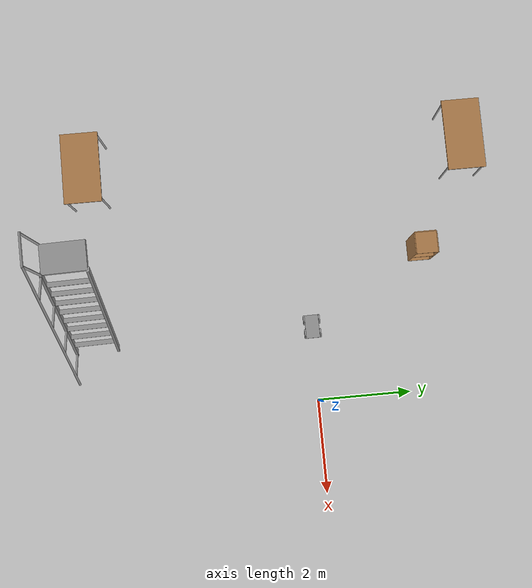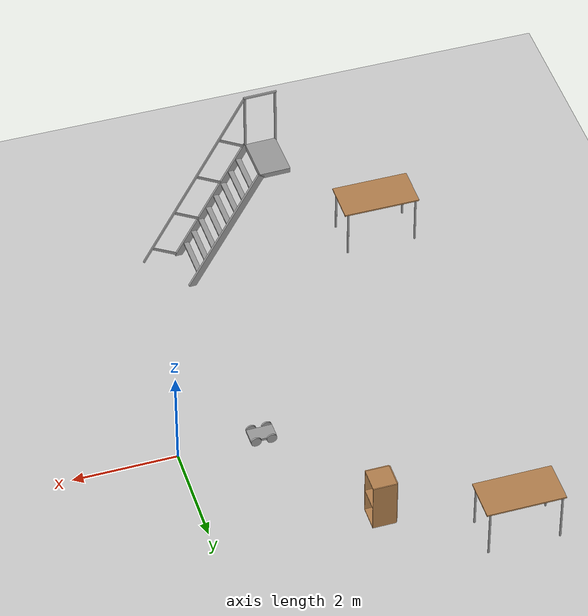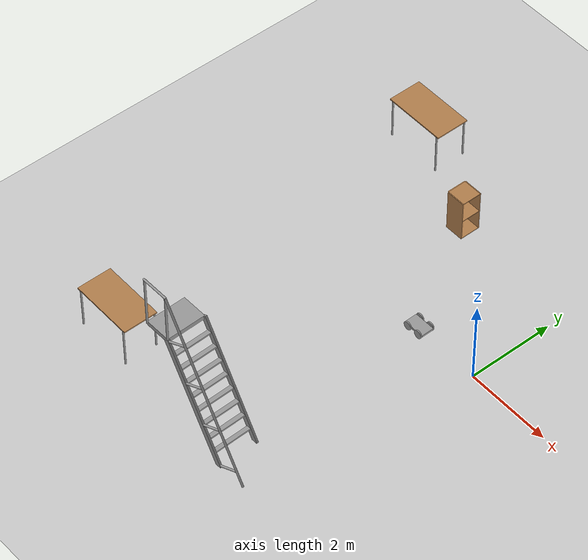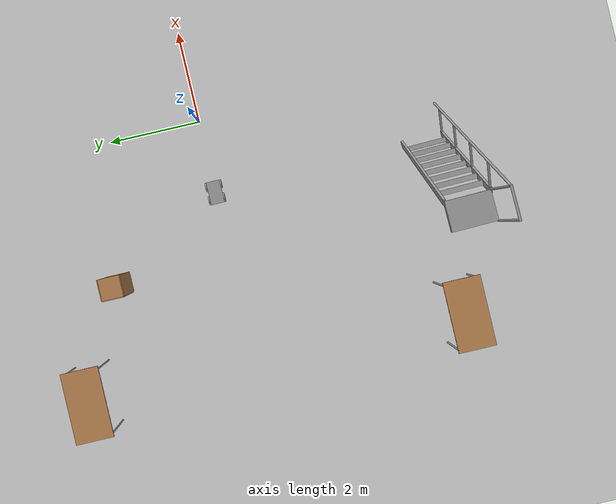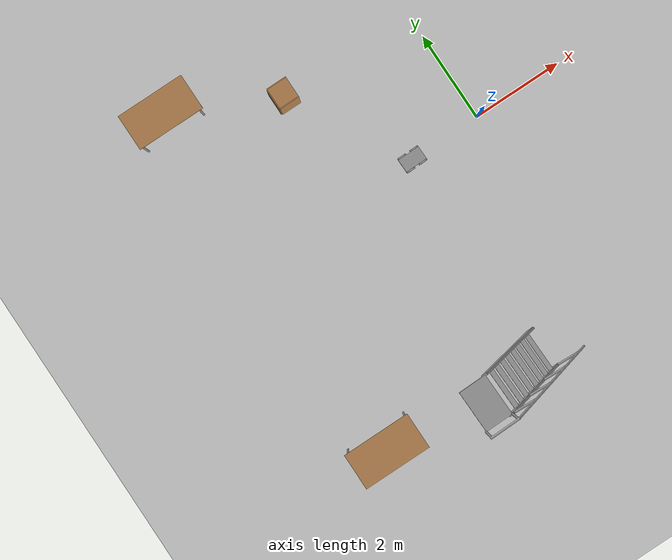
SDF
<sdf version="1.6">
 <world name="default">
  <model name="ground_plane">
   <static>1</static>
   <link name="link">
    <collision name="collision">
     <geometry><plane><normal>0 0 1</normal><size>100 100</size></plane></geometry>
     <surface>
      <contact><collide_bitmask>65535</collide_bitmask></contact>
      <friction><ode><mu>100</mu><mu2>50</mu2></ode></friction>
     </surface>
    </collision>
    <visual name="visual">
     <cast_shadows>0</cast_shadows>
     <geometry><plane><normal>0 0 1</normal><size>100 100</size></plane></geometry>
     <material>
      <script><uri>file://media/materials/scripts/gazebo.material</uri><name>Gazebo/Grey</name></script>
     </material>
    </visual>
   </link>
  </model>
  <model name="four_wd">
   <link name="link_0">
    <pose>-6.8e-05 0 0 0 -0 0</pose>
    <inertial>
     <mass>1</mass>
     <inertia>
      <ixx>0.166667</ixx>
      <ixy>0</ixy>
      <ixz>0</ixz>
      <iyy>0.166667</iyy>
      <iyz>0</iyz>
      <izz>0.166667</izz>
     </inertia>
    </inertial>
    <visual name="visual">
     <geometry><box><size>0.5 0.3 0.05</size></box></geometry>
     <material>
      <lighting>1</lighting>
      <script><uri>file://media/materials/scripts/gazebo.material</uri><name>Gazebo/Grey</name></script>
      <shader type="pixel"><normal_map>__default__</normal_map></shader>
      <ambient>0.3 0.3 0.3 1</ambient>
      <diffuse>0.7 0.7 0.7 1</diffuse>
      <specular>0.01 0.01 0.01 1</specular>
      <emissive>0 0 0 1</emissive>
     </material>
    </visual>
    <collision name="collision">
     <geometry><box><size>0.5 0.3 0.05</size></box></geometry>
     <surface>
      <friction>
       <ode><mu>1</mu><mu2>1</mu2><fdir1>0 0 0</fdir1><slip1>0</slip1><slip2>0</slip2></ode>
       <torsional>
        <coefficient>1</coefficient>
        <patch_radius>0</patch_radius>
        <surface_radius>0</surface_radius>
        <use_patch_radius>1</use_patch_radius>
        <ode><slip>0</slip></ode>
       </torsional>
      </friction>
      <bounce><restitution_coefficient>0</restitution_coefficient><threshold>1e+06</threshold></bounce>
      <contact>
       <collide_without_contact>0</collide_without_contact>
       <collide_without_contact_bitmask>1</collide_without_contact_bitmask>
       <collide_bitmask>1</collide_bitmask>
       <ode>
        <soft_cfm>0</soft_cfm>
        <soft_erp>0.2</soft_erp>
        <kp>1e+13</kp>
        <kd>1</kd>
        <max_vel>0.01</max_vel>
        <min_depth>0</min_depth>
       </ode>
       <bullet>
        <split_impulse>1</split_impulse>
        <split_impulse_penetration_threshold>-0.01</split_impulse_penetration_threshold>
        <soft_cfm>0</soft_cfm>
        <soft_erp>0.2</soft_erp>
        <kp>1e+13</kp>
        <kd>1</kd>
       </bullet>
      </contact>
     </surface>
    </collision>
   </link>
   <link name="link_1_clone">
    <pose>0.149932 0.16501 0 1.5707 -0 0</pose>
    <inertial>
     <mass>1</mass>
     <inertia><ixx>0.145833</ixx><ixy>0</ixy><ixz>0</ixz><iyy>0.145833</iyy><iyz>0</iyz><izz>0.125</izz></inertia>
    </inertial>
    <visual name="visual">
     <geometry><cylinder><radius>0.1</radius><length>0.03</length></cylinder></geometry>
     <material>
      <lighting>1</lighting>
      <script><uri>file://media/materials/scripts/gazebo.material</uri><name>Gazebo/Grey</name></script>
      <shader type="pixel"><normal_map>__default__</normal_map></shader>
      <ambient>0.3 0.3 0.3 1</ambient>
      <diffuse>0.7 0.7 0.7 1</diffuse>
      <specular>0.01 0.01 0.01 1</specular>
      <emissive>0 0 0 1</emissive>
     </material>
    </visual>
    <collision name="collision">
     <geometry><cylinder><radius>0.1</radius><length>0.03</length></cylinder></geometry>
     <surface>
      <friction>
       <ode><mu>1</mu><mu2>1</mu2><fdir1>0 0 0</fdir1><slip1>0</slip1><slip2>0</slip2></ode>
       <torsional>
        <coefficient>1</coefficient>
        <patch_radius>0</patch_radius>
        <surface_radius>0</surface_radius>
        <use_patch_radius>1</use_patch_radius>
        <ode><slip>0</slip></ode>
       </torsional>
      </friction>
      <bounce><restitution_coefficient>0</restitution_coefficient><threshold>1e+06</threshold></bounce>
      <contact>
       <collide_without_contact>0</collide_without_contact>
       <collide_without_contact_bitmask>1</collide_without_contact_bitmask>
       <collide_bitmask>1</collide_bitmask>
       <ode>
        <soft_cfm>0</soft_cfm>
        <soft_erp>0.2</soft_erp>
        <kp>1e+13</kp>
        <kd>1</kd>
        <max_vel>0.01</max_vel>
        <min_depth>0</min_depth>
       </ode>
       <bullet>
        <split_impulse>1</split_impulse>
        <split_impulse_penetration_threshold>-0.01</split_impulse_penetration_threshold>
        <soft_cfm>0</soft_cfm>
        <soft_erp>0.2</soft_erp>
        <kp>1e+13</kp>
        <kd>1</kd>
       </bullet>
      </contact>
     </surface>
    </collision>
   </link>
   <link name="link_1_clone_1">
    <pose>-0.150068 0.16501 0 1.5707 -0 0</pose>
    <inertial>
     <mass>1</mass>
     <inertia><ixx>0.145833</ixx><ixy>0</ixy><ixz>0</ixz><iyy>0.145833</iyy><iyz>0</iyz><izz>0.125</izz></inertia>
    </inertial>
    <visual name="visual">
     <geometry><cylinder><radius>0.1</radius><length>0.03</length></cylinder></geometry>
     <material>
      <lighting>1</lighting>
      <script><uri>file://media/materials/scripts/gazebo.material</uri><name>Gazebo/Grey</name></script>
      <shader type="pixel"><normal_map>__default__</normal_map></shader>
      <ambient>0.3 0.3 0.3 1</ambient>
      <diffuse>0.7 0.7 0.7 1</diffuse>
      <specular>0.01 0.01 0.01 1</specular>
      <emissive>0 0 0 1</emissive>
     </material>
    </visual>
    <collision name="collision">
     <geometry><cylinder><radius>0.1</radius><length>0.03</length></cylinder></geometry>
     <surface>
      <friction>
       <ode><mu>1</mu><mu2>1</mu2><fdir1>0 0 0</fdir1><slip1>0</slip1><slip2>0</slip2></ode>
       <torsional>
        <coefficient>1</coefficient>
        <patch_radius>0</patch_radius>
        <surface_radius>0</surface_radius>
        <use_patch_radius>1</use_patch_radius>
        <ode><slip>0</slip></ode>
       </torsional>
      </friction>
      <bounce><restitution_coefficient>0</restitution_coefficient><threshold>1e+06</threshold></bounce>
      <contact>
       <collide_without_contact>0</collide_without_contact>
       <collide_without_contact_bitmask>1</collide_without_contact_bitmask>
       <collide_bitmask>1</collide_bitmask>
       <ode>
        <soft_cfm>0</soft_cfm>
        <soft_erp>0.2</soft_erp>
        <kp>1e+13</kp>
        <kd>1</kd>
        <max_vel>0.01</max_vel>
        <min_depth>0</min_depth>
       </ode>
       <bullet>
        <split_impulse>1</split_impulse>
        <split_impulse_penetration_threshold>-0.01</split_impulse_penetration_threshold>
        <soft_cfm>0</soft_cfm>
        <soft_erp>0.2</soft_erp>
        <kp>1e+13</kp>
        <kd>1</kd>
       </bullet>
      </contact>
     </surface>
    </collision>
   </link>
   <link name="link_1_clone_1_clone">
    <pose>-0.150068 -0.16501 0 1.5707 -0 0</pose>
    <inertial>
     <mass>1</mass>
     <inertia><ixx>0.145833</ixx><ixy>0</ixy><ixz>0</ixz><iyy>0.145833</iyy><iyz>0</iyz><izz>0.125</izz></inertia>
    </inertial>
    <visual name="visual">
     <geometry><cylinder><radius>0.1</radius><length>0.03</length></cylinder></geometry>
     <material>
      <lighting>1</lighting>
      <script><uri>file://media/materials/scripts/gazebo.material</uri><name>Gazebo/Grey</name></script>
      <shader type="pixel"><normal_map>__default__</normal_map></shader>
      <ambient>0.3 0.3 0.3 1</ambient>
      <diffuse>0.7 0.7 0.7 1</diffuse>
      <specular>0.01 0.01 0.01 1</specular>
      <emissive>0 0 0 1</emissive>
     </material>
    </visual>
    <collision name="collision">
     <geometry><cylinder><radius>0.1</radius><length>0.03</length></cylinder></geometry>
     <surface>
      <friction>
       <ode><mu>1</mu><mu2>1</mu2><fdir1>0 0 0</fdir1><slip1>0</slip1><slip2>0</slip2></ode>
       <torsional>
        <coefficient>1</coefficient>
        <patch_radius>0</patch_radius>
        <surface_radius>0</surface_radius>
        <use_patch_radius>1</use_patch_radius>
        <ode><slip>0</slip></ode>
       </torsional>
      </friction>
      <bounce><restitution_coefficient>0</restitution_coefficient><threshold>1e+06</threshold></bounce>
      <contact>
       <collide_without_contact>0</collide_without_contact>
       <collide_without_contact_bitmask>1</collide_without_contact_bitmask>
       <collide_bitmask>1</collide_bitmask>
       <ode>
        <soft_cfm>0</soft_cfm>
        <soft_erp>0.2</soft_erp>
        <kp>1e+13</kp>
        <kd>1</kd>
        <max_vel>0.01</max_vel>
        <min_depth>0</min_depth>
       </ode>
       <bullet>
        <split_impulse>1</split_impulse>
        <split_impulse_penetration_threshold>-0.01</split_impulse_penetration_threshold>
        <soft_cfm>0</soft_cfm>
        <soft_erp>0.2</soft_erp>
        <kp>1e+13</kp>
        <kd>1</kd>
       </bullet>
      </contact>
     </surface>
    </collision>
   </link>
   <link name="link_1_clone_1_clone_0">
    <pose>0.149932 -0.16501 0 1.5707 -0 0</pose>
    <inertial>
     <mass>1</mass>
     <inertia><ixx>0.145833</ixx><ixy>0</ixy><ixz>0</ixz><iyy>0.145833</iyy><iyz>0</iyz><izz>0.125</izz></inertia>
    </inertial>
    <visual name="visual">
     <geometry><cylinder><radius>0.1</radius><length>0.03</length></cylinder></geometry>
     <material>
      <lighting>1</lighting>
      <script><uri>file://media/materials/scripts/gazebo.material</uri><name>Gazebo/Grey</name></script>
      <shader type="pixel"><normal_map>__default__</normal_map></shader>
      <ambient>0.3 0.3 0.3 1</ambient>
      <diffuse>0.7 0.7 0.7 1</diffuse>
      <specular>0.01 0.01 0.01 1</specular>
      <emissive>0 0 0 1</emissive>
     </material>
    </visual>
    <collision name="collision">
     <geometry><cylinder><radius>0.1</radius><length>0.03</length></cylinder></geometry>
     <surface>
      <friction>
       <ode><mu>1</mu><mu2>1</mu2><fdir1>0 0 0</fdir1><slip1>0</slip1><slip2>0</slip2></ode>
       <torsional>
        <coefficient>1</coefficient>
        <patch_radius>0</patch_radius>
        <surface_radius>0</surface_radius>
        <use_patch_radius>1</use_patch_radius>
        <ode><slip>0</slip></ode>
       </torsional>
      </friction>
      <bounce><restitution_coefficient>0</restitution_coefficient><threshold>1e+06</threshold></bounce>
      <contact>
       <collide_without_contact>0</collide_without_contact>
       <collide_without_contact_bitmask>1</collide_without_contact_bitmask>
       <collide_bitmask>1</collide_bitmask>
       <ode>
        <soft_cfm>0</soft_cfm>
        <soft_erp>0.2</soft_erp>
        <kp>1e+13</kp>
        <kd>1</kd>
        <max_vel>0.01</max_vel>
        <min_depth>0</min_depth>
       </ode>
       <bullet>
        <split_impulse>1</split_impulse>
        <split_impulse_penetration_threshold>-0.01</split_impulse_penetration_threshold>
        <soft_cfm>0</soft_cfm>
        <soft_erp>0.2</soft_erp>
        <kp>1e+13</kp>
        <kd>1</kd>
       </bullet>
      </contact>
     </surface>
    </collision>
   </link>
   <joint name="link_0_JOINT_3" type="revolute">
    <parent>link_0</parent>
    <child>link_1_clone</child>
    <axis>
     <xyz>1 0 0</xyz>
     <use_parent_model_frame>0</use_parent_model_frame>
     <limit>
      <lower>-1.79769e+308</lower>
      <upper>1.79769e+308</upper>
      <effort>-1</effort>
      <velocity>-1</velocity>
     </limit>
     <dynamics>
      <spring_reference>0</spring_reference>
      <spring_stiffness>0</spring_stiffness>
      <damping>0</damping>
     </dynamics>
    </axis>
    <physics>
     <ode><limit><cfm>0</cfm><erp>0.2</erp></limit><suspension><cfm>0</cfm><erp>0.2</erp></suspension></ode>
    </physics>
   </joint>
   <joint name="link_0_JOINT_4" type="revolute">
    <parent>link_0</parent>
    <child>link_1_clone_1</child>
    <axis>
     <xyz>0 0 1</xyz>
     <use_parent_model_frame>0</use_parent_model_frame>
     <limit>
      <lower>-1.79769e+308</lower>
      <upper>1.79769e+308</upper>
      <effort>-1</effort>
      <velocity>-1</velocity>
     </limit>
     <dynamics>
      <spring_reference>0</spring_reference>
      <spring_stiffness>0</spring_stiffness>
      <damping>0</damping>
     </dynamics>
    </axis>
    <physics>
     <ode><limit><cfm>0</cfm><erp>0.2</erp></limit><suspension><cfm>0</cfm><erp>0.2</erp></suspension></ode>
    </physics>
   </joint>
   <joint name="link_0_JOINT_5" type="revolute">
    <parent>link_0</parent>
    <child>link_1_clone_1_clone_0</child>
    <axis>
     <xyz>0 0 1</xyz>
     <use_parent_model_frame>0</use_parent_model_frame>
     <limit>
      <lower>-1.79769e+308</lower>
      <upper>1.79769e+308</upper>
      <effort>-1</effort>
      <velocity>-1</velocity>
     </limit>
     <dynamics>
      <spring_reference>0</spring_reference>
      <spring_stiffness>0</spring_stiffness>
      <damping>0</damping>
     </dynamics>
    </axis>
    <physics>
     <ode><limit><cfm>0</cfm><erp>0.2</erp></limit><suspension><cfm>0</cfm><erp>0.2</erp></suspension></ode>
    </physics>
   </joint>
   <joint name="link_0_JOINT_6" type="revolute">
    <parent>link_0</parent>
    <child>link_1_clone_1_clone</child>
    <axis>
     <xyz>0 0 1</xyz>
     <use_parent_model_frame>0</use_parent_model_frame>
     <limit>
      <lower>-1.79769e+308</lower>
      <upper>1.79769e+308</upper>
      <effort>-1</effort>
      <velocity>-1</velocity>
     </limit>
     <dynamics>
      <spring_reference>0</spring_reference>
      <spring_stiffness>0</spring_stiffness>
      <damping>0</damping>
     </dynamics>
    </axis>
    <physics>
     <ode><limit><cfm>0</cfm><erp>0.2</erp></limit><suspension><cfm>0</cfm><erp>0.2</erp></suspension></ode>
    </physics>
   </joint>
   <static>0</static>
   <pose>-1.5932 0.001925 0.100001 -4e-06 1e-06 0.01208</pose>
  </model>
  <model name="ladder_60deg_1rails">
   <static>1</static>
   <link name="step0">
    <pose>0 0.15396 0.266667 0 -0 0</pose>
    <inertial>
     <mass>9.75482</mass>
     <inertia>
      <ixx>0.00957124</ixx>
      <iyy>0.65963</iyy>
      <izz>0.666842</izz>
      <ixy>0</ixy>
      <ixz>0</ixz>
      <iyz>0</iyz>
     </inertia>
    </inertial>
    <collision name="collision"><geometry><box><size>0.9 0.1016 0.0381</size></box></geometry></collision>
    <visual name="visual">
     <geometry><box><size>0.9 0.1016 0.0381</size></box></geometry>
     <material>
      <script><uri>file://media/materials/scripts/gazebo.material</uri><name>Gazebo/Grey</name></script>
     </material>
    </visual>
   </link>
   <link name="step1">
    <pose>0 0.30792 0.533333 0 -0 0</pose>
    <inertial>
     <mass>9.75482</mass>
     <inertia>
      <ixx>0.00957124</ixx>
      <iyy>0.65963</iyy>
      <izz>0.666842</izz>
      <ixy>0</ixy>
      <ixz>0</ixz>
      <iyz>0</iyz>
     </inertia>
    </inertial>
    <collision name="collision"><geometry><box><size>0.9 0.1016 0.0381</size></box></geometry></collision>
    <visual name="visual">
     <geometry><box><size>0.9 0.1016 0.0381</size></box></geometry>
     <material>
      <script><uri>file://media/materials/scripts/gazebo.material</uri><name>Gazebo/Grey</name></script>
     </material>
    </visual>
   </link>
   <link name="step2">
    <pose>0 0.46188 0.8 0 -0 0</pose>
    <inertial>
     <mass>9.75482</mass>
     <inertia>
      <ixx>0.00957124</ixx>
      <iyy>0.65963</iyy>
      <izz>0.666842</izz>
      <ixy>0</ixy>
      <ixz>0</ixz>
      <iyz>0</iyz>
     </inertia>
    </inertial>
    <collision name="collision"><geometry><box><size>0.9 0.1016 0.0381</size></box></geometry></collision>
    <visual name="visual">
     <geometry><box><size>0.9 0.1016 0.0381</size></box></geometry>
     <material>
      <script><uri>file://media/materials/scripts/gazebo.material</uri><name>Gazebo/Grey</name></script>
     </material>
    </visual>
   </link>
   <link name="step3">
    <pose>0 0.61584 1.06667 0 -0 0</pose>
    <inertial>
     <mass>9.75482</mass>
     <inertia>
      <ixx>0.00957124</ixx>
      <iyy>0.65963</iyy>
      <izz>0.666842</izz>
      <ixy>0</ixy>
      <ixz>0</ixz>
      <iyz>0</iyz>
     </inertia>
    </inertial>
    <collision name="collision"><geometry><box><size>0.9 0.1016 0.0381</size></box></geometry></collision>
    <visual name="visual">
     <geometry><box><size>0.9 0.1016 0.0381</size></box></geometry>
     <material>
      <script><uri>file://media/materials/scripts/gazebo.material</uri><name>Gazebo/Grey</name></script>
     </material>
    </visual>
   </link>
   <link name="step4">
    <pose>0 0.7698 1.33333 0 -0 0</pose>
    <inertial>
     <mass>9.75482</mass>
     <inertia>
      <ixx>0.00957124</ixx>
      <iyy>0.65963</iyy>
      <izz>0.666842</izz>
      <ixy>0</ixy>
      <ixz>0</ixz>
      <iyz>0</iyz>
     </inertia>
    </inertial>
    <collision name="collision"><geometry><box><size>0.9 0.1016 0.0381</size></box></geometry></collision>
    <visual name="visual">
     <geometry><box><size>0.9 0.1016 0.0381</size></box></geometry>
     <material>
      <script><uri>file://media/materials/scripts/gazebo.material</uri><name>Gazebo/Grey</name></script>
     </material>
    </visual>
   </link>
   <link name="step5">
    <pose>0 0.92376 1.6 0 -0 0</pose>
    <inertial>
     <mass>9.75482</mass>
     <inertia>
      <ixx>0.00957124</ixx>
      <iyy>0.65963</iyy>
      <izz>0.666842</izz>
      <ixy>0</ixy>
      <ixz>0</ixz>
      <iyz>0</iyz>
     </inertia>
    </inertial>
    <collision name="collision"><geometry><box><size>0.9 0.1016 0.0381</size></box></geometry></collision>
    <visual name="visual">
     <geometry><box><size>0.9 0.1016 0.0381</size></box></geometry>
     <material>
      <script><uri>file://media/materials/scripts/gazebo.material</uri><name>Gazebo/Grey</name></script>
     </material>
    </visual>
   </link>
   <link name="step6">
    <pose>0 1.07772 1.86667 0 -0 0</pose>
    <inertial>
     <mass>9.75482</mass>
     <inertia>
      <ixx>0.00957124</ixx>
      <iyy>0.65963</iyy>
      <izz>0.666842</izz>
      <ixy>0</ixy>
      <ixz>0</ixz>
      <iyz>0</iyz>
     </inertia>
    </inertial>
    <collision name="collision"><geometry><box><size>0.9 0.1016 0.0381</size></box></geometry></collision>
    <visual name="visual">
     <geometry><box><size>0.9 0.1016 0.0381</size></box></geometry>
     <material>
      <script><uri>file://media/materials/scripts/gazebo.material</uri><name>Gazebo/Grey</name></script>
     </material>
    </visual>
   </link>
   <link name="step7">
    <pose>0 1.23168 2.13333 0 -0 0</pose>
    <inertial>
     <mass>9.75482</mass>
     <inertia>
      <ixx>0.00957124</ixx>
      <iyy>0.65963</iyy>
      <izz>0.666842</izz>
      <ixy>0</ixy>
      <ixz>0</ixz>
      <iyz>0</iyz>
     </inertia>
    </inertial>
    <collision name="collision"><geometry><box><size>0.9 0.1016 0.0381</size></box></geometry></collision>
    <visual name="visual">
     <geometry><box><size>0.9 0.1016 0.0381</size></box></geometry>
     <material>
      <script><uri>file://media/materials/scripts/gazebo.material</uri><name>Gazebo/Grey</name></script>
     </material>
    </visual>
   </link>
   <link name="landing">
    <pose>0 1.68564 2.4 0 -0 0</pose>
    <inertial>
     <mass>57.6072</mass>
     <inertia><ixx>1.73518</ixx><iyy>3.89545</iyy><izz>5.6167</izz><ixy>0</ixy><ixz>0</ixz><iyz>0</iyz></inertia>
    </inertial>
    <collision name="collision"><geometry><box><size>0.9 0.6 0.1016</size></box></geometry></collision>
    <visual name="visual">
     <geometry><box><size>0.9 0.6 0.1016</size></box></geometry>
     <material>
      <script><uri>file://media/materials/scripts/gazebo.material</uri><name>Gazebo/Grey</name></script>
     </material>
    </visual>
   </link>
   <link name="left_side_wall">
    <pose>-0.45 0.69282 1.2 1.0472 -0 0</pose>
    <collision name="collision"><geometry><box><size>0.0508 2.85128 0.13</size></box></geometry></collision>
    <visual name="visual">
     <geometry><box><size>0.0508 2.85128 0.13</size></box></geometry>
     <material>
      <script><uri>file://media/materials/scripts/gazebo.material</uri><name>Gazebo/Grey</name></script>
     </material>
    </visual>
   </link>
   <link name="right_side_wall">
    <pose>0.45 0.69282 1.2 1.0472 -0 0</pose>
    <collision name="collision"><geometry><box><size>0.0508 2.85128 0.13</size></box></geometry></collision>
    <visual name="visual">
     <geometry><box><size>0.0508 2.85128 0.13</size></box></geometry>
     <material>
      <script><uri>file://media/materials/scripts/gazebo.material</uri><name>Gazebo/Grey</name></script>
     </material>
    </visual>
   </link>
   <link name="left_railing_long">
    <pose>-0.45 0.34282 1.80622 -0.523599 0 0</pose>
    <collision name="collision">
     <geometry><cylinder><radius>0.02413</radius><length>4.17128</length></cylinder></geometry>
    </collision>
    <visual name="visual">
     <geometry><cylinder><radius>0.02413</radius><length>4.17128</length></cylinder></geometry>
     <material>
      <script><uri>file://media/materials/scripts/gazebo.material</uri><name>Gazebo/Grey</name></script>
     </material>
    </visual>
   </link>
   <link name="left_railing_upright0">
    <pose>-0.45 -0.274963 0.15875 1.0472 -0 0</pose>
    <collision name="collision">
     <geometry><cylinder><radius>0.02413</radius><length>0.541218</length></cylinder></geometry>
    </collision>
    <visual name="visual">
     <geometry><cylinder><radius>0.02413</radius><length>0.541218</length></cylinder></geometry>
     <material>
      <script><uri>file://media/materials/scripts/gazebo.material</uri><name>Gazebo/Grey</name></script>
     </material>
    </visual>
   </link>
   <link name="left_railing_upright1">
    <pose>-0.45 0.186917 0.95875 1.0472 -0 0</pose>
    <collision name="collision">
     <geometry><cylinder><radius>0.02413</radius><length>0.541218</length></cylinder></geometry>
    </collision>
    <visual name="visual">
     <geometry><cylinder><radius>0.02413</radius><length>0.541218</length></cylinder></geometry>
     <material>
      <script><uri>file://media/materials/scripts/gazebo.material</uri><name>Gazebo/Grey</name></script>
     </material>
    </visual>
   </link>
   <link name="left_railing_upright2">
    <pose>-0.45 0.648797 1.75875 1.0472 -0 0</pose>
    <collision name="collision">
     <geometry><cylinder><radius>0.02413</radius><length>0.541218</length></cylinder></geometry>
    </collision>
    <visual name="visual">
     <geometry><cylinder><radius>0.02413</radius><length>0.541218</length></cylinder></geometry>
     <material>
      <script><uri>file://media/materials/scripts/gazebo.material</uri><name>Gazebo/Grey</name></script>
     </material>
    </visual>
   </link>
   <link name="left_railing_upright3">
    <pose>-0.45 1.11068 2.55875 1.0472 -0 0</pose>
    <collision name="collision">
     <geometry><cylinder><radius>0.02413</radius><length>0.541218</length></cylinder></geometry>
    </collision>
    <visual name="visual">
     <geometry><cylinder><radius>0.02413</radius><length>0.541218</length></cylinder></geometry>
     <material>
      <script><uri>file://media/materials/scripts/gazebo.material</uri><name>Gazebo/Grey</name></script>
     </material>
    </visual>
   </link>
   <link name="left_railing_landing_top">
    <pose>-0.45 1.68564 3.61244 1.5708 -0 0</pose>
    <collision name="collision">
     <geometry><cylinder><radius>0.02413</radius><length>0.64826</length></cylinder></geometry>
    </collision>
    <visual name="visual">
     <geometry><cylinder><radius>0.02413</radius><length>0.64826</length></cylinder></geometry>
     <material>
      <script><uri>file://media/materials/scripts/gazebo.material</uri><name>Gazebo/Grey</name></script>
     </material>
    </visual>
   </link>
   <link name="left_railing_landing_upright_0">
    <pose>-0.45 1.38564 3.00622 0 -0 0</pose>
    <collision name="collision">
     <geometry><cylinder><radius>0.02413</radius><length>1.21244</length></cylinder></geometry>
    </collision>
    <visual name="visual">
     <geometry><cylinder><radius>0.02413</radius><length>1.21244</length></cylinder></geometry>
     <material>
      <script><uri>file://media/materials/scripts/gazebo.material</uri><name>Gazebo/Grey</name></script>
     </material>
    </visual>
   </link>
   <link name="left_railing_landing_upright_1">
    <pose>-0.45 1.98564 3.00622 0 -0 0</pose>
    <collision name="collision">
     <geometry><cylinder><radius>0.02413</radius><length>1.21244</length></cylinder></geometry>
    </collision>
    <visual name="visual">
     <geometry><cylinder><radius>0.02413</radius><length>1.21244</length></cylinder></geometry>
     <material>
      <script><uri>file://media/materials/scripts/gazebo.material</uri><name>Gazebo/Grey</name></script>
     </material>
    </visual>
   </link>
   <pose>-1.49168 -4.6998 0 0 -0 1.59296</pose>
  </model>
  <model name="cabinet">
   <static>1</static>
   <link name="cabinet_bottom_plate">
    <inertial>
     <pose>0 0 -1 0 -0 0</pose>
     <inertia><ixx>2.05</ixx><ixy>0</ixy><ixz>0</ixz><iyy>2.05</iyy><iyz>0</iyz><izz>2.05</izz></inertia>
     <mass>25</mass>
    </inertial>
    <collision name="cabinet_bottom_plate_geom">
     <pose>0 0 0.01 0 -0 0</pose>
     <geometry><box><size>0.45 0.45 0.02</size></box></geometry>
    </collision>
    <visual name="cabinet_bottom_plate_geom_visual">
     <pose>0 0 0.01 0 -0 0</pose>
     <geometry><box><size>0.45 0.45 0.02</size></box></geometry>
     <material>
      <script><uri>file://media/materials/scripts/gazebo.material</uri><name>Gazebo/Wood</name></script>
     </material>
    </visual>
    <collision name="cabinet_bottom_plate_geom_cabinet_back_plate">
     <pose>0.235 0 0.51 0 -0 0</pose>
     <geometry><box><size>0.02 0.45 1.02</size></box></geometry>
    </collision>
    <visual name="cabinet_bottom_plate_geom_cabinet_back_plate_visual">
     <pose>0.235 0 0.51 0 -0 0</pose>
     <geometry><box><size>0.02 0.45 1.02</size></box></geometry>
     <material>
      <script><uri>file://media/materials/scripts/gazebo.material</uri><name>Gazebo/Wood</name></script>
     </material>
    </visual>
    <collision name="cabinet_bottom_plate_geom_cabinet_left_plate">
     <pose>0 0.235 0.51 0 -0 0</pose>
     <geometry><box><size>0.45 0.02 1.02</size></box></geometry>
    </collision>
    <visual name="cabinet_bottom_plate_geom_cabinet_left_plate_visual">
     <pose>0 0.235 0.51 0 -0 0</pose>
     <geometry><box><size>0.45 0.02 1.02</size></box></geometry>
     <material>
      <script><uri>file://media/materials/scripts/gazebo.material</uri><name>Gazebo/Wood</name></script>
     </material>
    </visual>
    <collision name="cabinet_bottom_plate_geom_cabinet_middle_plate">
     <pose>0 0 0.51 0 -0 0</pose>
     <geometry><box><size>0.45 0.45 0.02</size></box></geometry>
    </collision>
    <visual name="cabinet_bottom_plate_geom_cabinet_middle_plate_visual">
     <pose>0 0 0.51 0 -0 0</pose>
     <geometry><box><size>0.45 0.45 0.02</size></box></geometry>
     <material>
      <script><uri>file://media/materials/scripts/gazebo.material</uri><name>Gazebo/Wood</name></script>
     </material>
    </visual>
    <collision name="cabinet_bottom_plate_geom_cabinet_right_plate">
     <pose>0 -0.235 0.51 0 -0 0</pose>
     <geometry><box><size>0.45 0.02 1.02</size></box></geometry>
    </collision>
    <visual name="cabinet_bottom_plate_geom_cabinet_right_plate_visual">
     <pose>0 -0.235 0.51 0 -0 0</pose>
     <geometry><box><size>0.45 0.02 1.02</size></box></geometry>
     <material>
      <script><uri>file://media/materials/scripts/gazebo.material</uri><name>Gazebo/Wood</name></script>
     </material>
    </visual>
    <collision name="cabinet_bottom_plate_geom_cabinet_top_plate">
     <pose>0 0 1.01 0 -0 0</pose>
     <geometry><box><size>0.45 0.45 0.02</size></box></geometry>
    </collision>
    <visual name="cabinet_bottom_plate_geom_cabinet_top_plate_visual">
     <pose>0 0 1.01 0 -0 0</pose>
     <geometry><box><size>0.45 0.45 0.02</size></box></geometry>
     <material>
      <script><uri>file://media/materials/scripts/gazebo.material</uri><name>Gazebo/Wood</name></script>
     </material>
    </visual>
   </link>
   <pose>-3.07453 2.49644 0 0 0 -3.1415</pose>
  </model>
  <model name="table_1">
   <static>1</static>
   <link name="link">
    <collision name="surface">
     <pose>0 0 1 0 -0 0</pose>
     <geometry><box><size>1.5 0.8 0.03</size></box></geometry>
     <surface><friction><ode><mu>0.6</mu><mu2>0.6</mu2></ode></friction></surface>
    </collision>
    <visual name="visual1">
     <pose>0 0 1 0 -0 0</pose>
     <geometry><box><size>1.5 0.8 0.03</size></box></geometry>
     <material>
      <script><uri>file://media/materials/scripts/gazebo.material</uri><name>Gazebo/Wood</name></script>
     </material>
    </visual>
    <collision name="front_left_leg">
     <pose>0.68 0.38 0.5 0 -0 0</pose>
     <geometry><cylinder><radius>0.02</radius><length>1</length></cylinder></geometry>
    </collision>
    <visual name="front_left_leg">
     <pose>0.68 0.38 0.5 0 -0 0</pose>
     <geometry><cylinder><radius>0.02</radius><length>1</length></cylinder></geometry>
     <material>
      <script><uri>file://media/materials/scripts/gazebo.material</uri><name>Gazebo/Grey</name></script>
     </material>
    </visual>
    <collision name="front_right_leg">
     <pose>0.68 -0.38 0.5 0 -0 0</pose>
     <geometry><cylinder><radius>0.02</radius><length>1</length></cylinder></geometry>
    </collision>
    <visual name="front_right_leg">
     <pose>0.68 -0.38 0.5 0 -0 0</pose>
     <geometry><cylinder><radius>0.02</radius><length>1</length></cylinder></geometry>
     <material>
      <script><uri>file://media/materials/scripts/gazebo.material</uri><name>Gazebo/Grey</name></script>
     </material>
    </visual>
    <collision name="back_right_leg">
     <pose>-0.68 -0.38 0.5 0 -0 0</pose>
     <geometry><cylinder><radius>0.02</radius><length>1</length></cylinder></geometry>
    </collision>
    <visual name="back_right_leg">
     <pose>-0.68 -0.38 0.5 0 -0 0</pose>
     <geometry><cylinder><radius>0.02</radius><length>1</length></cylinder></geometry>
     <material>
      <script><uri>file://media/materials/scripts/gazebo.material</uri><name>Gazebo/Grey</name></script>
     </material>
    </visual>
    <collision name="back_left_leg">
     <pose>-0.68 0.38 0.5 0 -0 0</pose>
     <geometry><cylinder><radius>0.02</radius><length>1</length></cylinder></geometry>
    </collision>
    <visual name="back_left_leg">
     <pose>-0.68 0.38 0.5 0 -0 0</pose>
     <geometry><cylinder><radius>0.02</radius><length>1</length></cylinder></geometry>
     <material>
      <script><uri>file://media/materials/scripts/gazebo.material</uri><name>Gazebo/Grey</name></script>
     </material>
    </visual>
   </link>
   <pose>-5.32285 3.52467 0 0 -0 0</pose>
  </model>
  <model name="table_2">
   <static>1</static>
   <link name="link">
    <collision name="surface">
     <pose>0 0 1 0 -0 0</pose>
     <geometry><box><size>1.5 0.8 0.03</size></box></geometry>
     <surface><friction><ode><mu>0.6</mu><mu2>0.6</mu2></ode></friction></surface>
    </collision>
    <visual name="visual1">
     <pose>0 0 1 0 -0 0</pose>
     <geometry><box><size>1.5 0.8 0.03</size></box></geometry>
     <material>
      <script><uri>file://media/materials/scripts/gazebo.material</uri><name>Gazebo/Wood</name></script>
     </material>
    </visual>
    <collision name="front_left_leg">
     <pose>0.68 0.38 0.5 0 -0 0</pose>
     <geometry><cylinder><radius>0.02</radius><length>1</length></cylinder></geometry>
    </collision>
    <visual name="front_left_leg">
     <pose>0.68 0.38 0.5 0 -0 0</pose>
     <geometry><cylinder><radius>0.02</radius><length>1</length></cylinder></geometry>
     <material>
      <script><uri>file://media/materials/scripts/gazebo.material</uri><name>Gazebo/Grey</name></script>
     </material>
    </visual>
    <collision name="front_right_leg">
     <pose>0.68 -0.38 0.5 0 -0 0</pose>
     <geometry><cylinder><radius>0.02</radius><length>1</length></cylinder></geometry>
    </collision>
    <visual name="front_right_leg">
     <pose>0.68 -0.38 0.5 0 -0 0</pose>
     <geometry><cylinder><radius>0.02</radius><length>1</length></cylinder></geometry>
     <material>
      <script><uri>file://media/materials/scripts/gazebo.material</uri><name>Gazebo/Grey</name></script>
     </material>
    </visual>
    <collision name="back_right_leg">
     <pose>-0.68 -0.38 0.5 0 -0 0</pose>
     <geometry><cylinder><radius>0.02</radius><length>1</length></cylinder></geometry>
    </collision>
    <visual name="back_right_leg">
     <pose>-0.68 -0.38 0.5 0 -0 0</pose>
     <geometry><cylinder><radius>0.02</radius><length>1</length></cylinder></geometry>
     <material>
      <script><uri>file://media/materials/scripts/gazebo.material</uri><name>Gazebo/Grey</name></script>
     </material>
    </visual>
    <collision name="back_left_leg">
     <pose>-0.68 0.38 0.5 0 -0 0</pose>
     <geometry><cylinder><radius>0.02</radius><length>1</length></cylinder></geometry>
    </collision>
    <visual name="back_left_leg">
     <pose>-0.68 0.38 0.5 0 -0 0</pose>
     <geometry><cylinder><radius>0.02</radius><length>1</length></cylinder></geometry>
     <material>
      <script><uri>file://media/materials/scripts/gazebo.material</uri><name>Gazebo/Grey</name></script>
     </material>
    </visual>
   </link>
   <pose>-5.30089 -4.59202 0 0 -0 0</pose>
  </model>
 </world>
</sdf>
